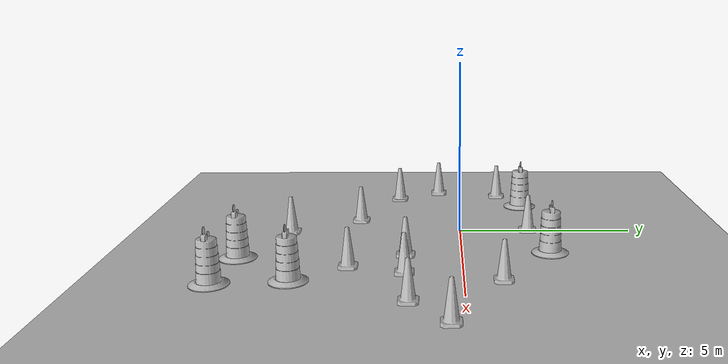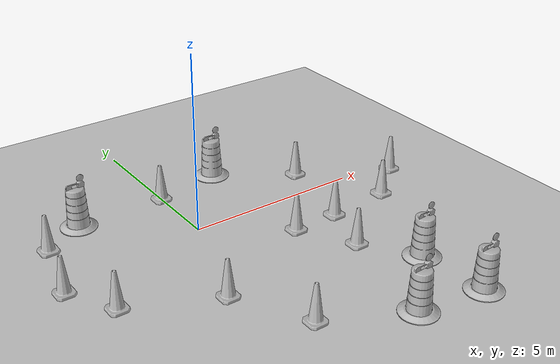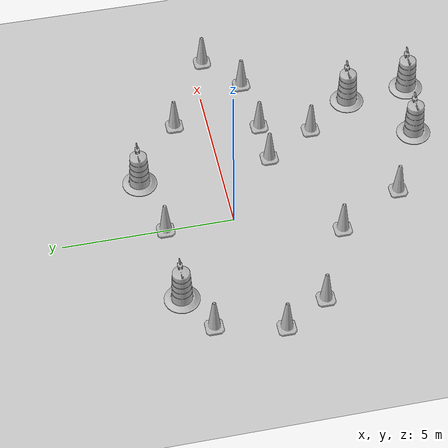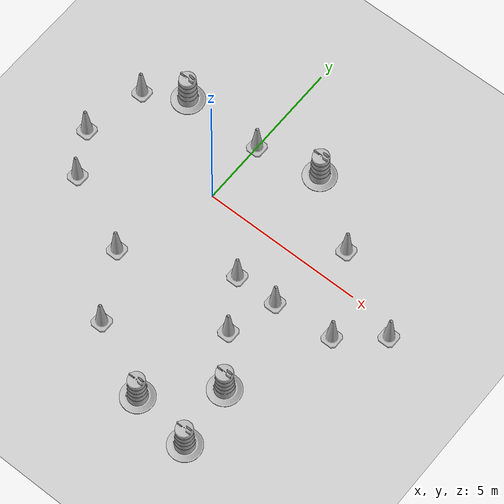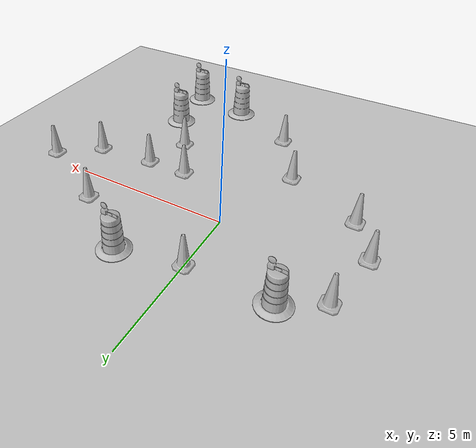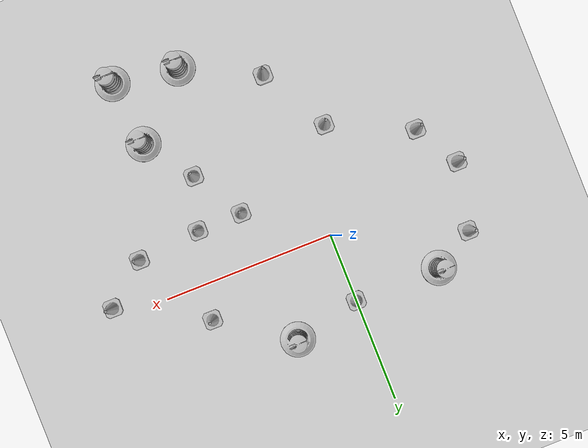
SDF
<sdf version="1.7">
 <world name="default">
  <light name="sun" type="directional">
   <pose>0 0 10 0 -0 0</pose>
   <diffuse>0.8 0.8 0.8 1</diffuse>
   <specular>0.2 0.2 0.2 1</specular>
   <attenuation>
    <range>1000</range>
    <constant>0.9</constant>
    <linear>0.01</linear>
    <quadratic>0.001</quadratic>
   </attenuation>
   <direction>-0.5 0.1 -0.9</direction>
   <spot><inner_angle>0</inner_angle><outer_angle>0</outer_angle><falloff>0</falloff></spot>
  </light>
  <model name="ground_plane">
   <static>1</static>
   <link name="link">
    <collision name="collision">
     <geometry><plane><normal>0 0 1</normal><size>100 100</size></plane></geometry>
     <surface>
      <contact><collide_bitmask>65535</collide_bitmask></contact>
      <friction><ode><mu>100</mu><mu2>50</mu2></ode></friction>
     </surface>
    </collision>
    <visual name="visual">
     <cast_shadows>0</cast_shadows>
     <geometry><plane><normal>0 0 1</normal><size>100 100</size></plane></geometry>
     <material>
      <script><uri>file://media/materials/scripts/gazebo.material</uri><name>Gazebo/Grey</name></script>
     </material>
    </visual>
   </link>
  </model>
  <gravity>0 0 -9.8</gravity>
  <magnetic_field>6e-06 2.3e-05 -4.2e-05</magnetic_field>
  <atmosphere type="adiabatic"/>
  <physics type="ode">
   <max_step_size>0.001</max_step_size>
   <real_time_factor>1</real_time_factor>
   <real_time_update_rate>1000</real_time_update_rate>
  </physics>
  <scene><ambient>0.4 0.4 0.4 1</ambient><background>0.7 0.7 0.7 1</background><shadows>1</shadows></scene>
  <audio><device>default</device></audio>
  <spherical_coordinates>
   <surface_model>EARTH_WGS84</surface_model>
   <latitude_deg>0</latitude_deg>
   <longitude_deg>0</longitude_deg>
   <elevation>0</elevation>
   <heading_deg>0</heading_deg>
  </spherical_coordinates>
  <model name="Construction Barrel">
   <link name="link">
    <inertial>
     <pose>0 0 0.4 0 -0 0</pose>
     <mass>500</mass>
     <inertia><ixx>51.2096</ixx><iyy>51.2096</iyy><izz>25</izz><ixy>0</ixy><ixz>0</ixz><iyz>0</iyz></inertia>
    </inertial>
    <collision name="collision">
     <geometry><mesh><uri>model://construction_barrel/meshes/construction_barrel.dae</uri></mesh></geometry>
    </collision>
    <visual name="visual">
     <geometry><mesh><uri>model://construction_barrel/meshes/construction_barrel.dae</uri></mesh></geometry>
    </visual>
   </link>
   <pose>3.99254 -4.38362 -1e-06 0 5e-06 -3e-05</pose>
  </model>
  <model name="Construction Cone">
   <link name="link">
    <collision name="collision">
     <geometry>
      <mesh><scale>10 10 10</scale><uri>model://construction_cone/meshes/construction_cone.dae</uri></mesh>
     </geometry>
    </collision>
    <visual name="visual">
     <geometry>
      <mesh><scale>10 10 10</scale><uri>model://construction_cone/meshes/construction_cone.dae</uri></mesh>
     </geometry>
    </visual>
    <inertial>
     <inertia><ixx>1</ixx><ixy>0</ixy><ixz>0</ixz><iyy>1</iyy><iyz>0</iyz><izz>1</izz></inertia>
     <mass>1</mass>
    </inertial>
   </link>
   <pose>0.09861 -4.95087 -0 0 -0 0</pose>
  </model>
  <model name="Construction Cone_clone">
   <link name="link">
    <collision name="collision">
     <geometry>
      <mesh><scale>10 10 10</scale><uri>model://construction_cone/meshes/construction_cone.dae</uri></mesh>
     </geometry>
    </collision>
    <visual name="visual">
     <geometry>
      <mesh><scale>10 10 10</scale><uri>model://construction_cone/meshes/construction_cone.dae</uri></mesh>
     </geometry>
    </visual>
    <inertial>
     <inertia><ixx>1</ixx><ixy>0</ixy><ixz>0</ixz><iyy>1</iyy><iyz>0</iyz><izz>1</izz></inertia>
     <mass>1</mass>
    </inertial>
   </link>
   <pose>2.13163 -1.53004 -0 0 -0 0</pose>
  </model>
  <model name="Construction Cone_clone_0">
   <link name="link">
    <collision name="collision">
     <geometry>
      <mesh><scale>10 10 10</scale><uri>model://construction_cone/meshes/construction_cone.dae</uri></mesh>
     </geometry>
    </collision>
    <visual name="visual">
     <geometry>
      <mesh><scale>10 10 10</scale><uri>model://construction_cone/meshes/construction_cone.dae</uri></mesh>
     </geometry>
    </visual>
    <inertial>
     <inertia><ixx>1</ixx><ixy>0</ixy><ixz>0</ixz><iyy>1</iyy><iyz>0</iyz><izz>1</izz></inertia>
     <mass>1</mass>
    </inertial>
   </link>
   <pose>3.45758 -1.51229 -8e-06 1e-06 -0 0</pose>
  </model>
  <model name="Construction Cone_clone_1">
   <link name="link">
    <collision name="collision">
     <geometry>
      <mesh><scale>10 10 10</scale><uri>model://construction_cone/meshes/construction_cone.dae</uri></mesh>
     </geometry>
    </collision>
    <visual name="visual">
     <geometry>
      <mesh><scale>10 10 10</scale><uri>model://construction_cone/meshes/construction_cone.dae</uri></mesh>
     </geometry>
    </visual>
    <inertial>
     <inertia><ixx>1</ixx><ixy>0</ixy><ixz>0</ixz><iyy>1</iyy><iyz>0</iyz><izz>1</izz></inertia>
     <mass>1</mass>
    </inertial>
   </link>
   <pose>5.31484 -1.34989 -0 0 -1e-06 0</pose>
  </model>
  <model name="Construction Cone_clone_2">
   <link name="link">
    <collision name="collision">
     <geometry>
      <mesh><scale>10 10 10</scale><uri>model://construction_cone/meshes/construction_cone.dae</uri></mesh>
     </geometry>
    </collision>
    <visual name="visual">
     <geometry>
      <mesh><scale>10 10 10</scale><uri>model://construction_cone/meshes/construction_cone.dae</uri></mesh>
     </geometry>
    </visual>
    <inertial>
     <inertia><ixx>1</ixx><ixy>0</ixy><ixz>0</ixz><iyy>1</iyy><iyz>0</iyz><izz>1</izz></inertia>
     <mass>1</mass>
    </inertial>
   </link>
   <pose>4 1 -6e-06 -4e-06 0 0</pose>
  </model>
  <model name="Construction Cone_clone_3">
   <link name="link">
    <collision name="collision">
     <geometry>
      <mesh><scale>10 10 10</scale><uri>model://construction_cone/meshes/construction_cone.dae</uri></mesh>
     </geometry>
    </collision>
    <visual name="visual">
     <geometry>
      <mesh><scale>10 10 10</scale><uri>model://construction_cone/meshes/construction_cone.dae</uri></mesh>
     </geometry>
    </visual>
    <inertial>
     <inertia><ixx>1</ixx><ixy>0</ixy><ixz>0</ixz><iyy>1</iyy><iyz>0</iyz><izz>1</izz></inertia>
     <mass>1</mass>
    </inertial>
   </link>
   <pose>-0 2 -0 0 -0 0</pose>
  </model>
  <model name="Construction Cone_clone_4">
   <link name="link">
    <collision name="collision">
     <geometry>
      <mesh><scale>10 10 10</scale><uri>model://construction_cone/meshes/construction_cone.dae</uri></mesh>
     </geometry>
    </collision>
    <visual name="visual">
     <geometry>
      <mesh><scale>10 10 10</scale><uri>model://construction_cone/meshes/construction_cone.dae</uri></mesh>
     </geometry>
    </visual>
    <inertial>
     <inertia><ixx>1</ixx><ixy>0</ixy><ixz>0</ixz><iyy>1</iyy><iyz>0</iyz><izz>1</izz></inertia>
     <mass>1</mass>
    </inertial>
   </link>
   <pose>-3.69601 1.31823 -5e-06 -4e-06 1e-06 0</pose>
  </model>
  <model name="Construction Cone_clone_5">
   <link name="link">
    <collision name="collision">
     <geometry>
      <mesh><scale>10 10 10</scale><uri>model://construction_cone/meshes/construction_cone.dae</uri></mesh>
     </geometry>
    </collision>
    <visual name="visual">
     <geometry>
      <mesh><scale>10 10 10</scale><uri>model://construction_cone/meshes/construction_cone.dae</uri></mesh>
     </geometry>
    </visual>
    <inertial>
     <inertia><ixx>1</ixx><ixy>0</ixy><ixz>0</ixz><iyy>1</iyy><iyz>0</iyz><izz>1</izz></inertia>
     <mass>1</mass>
    </inertial>
   </link>
   <pose>-3.37313 -1.91489 -0 0 -0 0</pose>
  </model>
  <model name="Construction Cone_clone_6">
   <link name="link">
    <collision name="collision">
     <geometry>
      <mesh><scale>10 10 10</scale><uri>model://construction_cone/meshes/construction_cone.dae</uri></mesh>
     </geometry>
    </collision>
    <visual name="visual">
     <geometry>
      <mesh><scale>10 10 10</scale><uri>model://construction_cone/meshes/construction_cone.dae</uri></mesh>
     </geometry>
    </visual>
    <inertial>
     <inertia><ixx>1</ixx><ixy>0</ixy><ixz>0</ixz><iyy>1</iyy><iyz>0</iyz><izz>1</izz></inertia>
     <mass>1</mass>
    </inertial>
   </link>
   <pose>-1 -3 0 -1e-06 0 0</pose>
  </model>
  <model name="Construction Cone_clone_7">
   <link name="link">
    <collision name="collision">
     <geometry>
      <mesh><scale>10 10 10</scale><uri>model://construction_cone/meshes/construction_cone.dae</uri></mesh>
     </geometry>
    </collision>
    <visual name="visual">
     <geometry>
      <mesh><scale>10 10 10</scale><uri>model://construction_cone/meshes/construction_cone.dae</uri></mesh>
     </geometry>
    </visual>
    <inertial>
     <inertia><ixx>1</ixx><ixy>0</ixy><ixz>0</ixz><iyy>1</iyy><iyz>0</iyz><izz>1</izz></inertia>
     <mass>1</mass>
    </inertial>
   </link>
   <pose>6.52441 -0.353051 -0 0 -0 0</pose>
  </model>
  <model name="Construction Cone_clone_8">
   <link name="link">
    <collision name="collision">
     <geometry>
      <mesh><scale>10 10 10</scale><uri>model://construction_cone/meshes/construction_cone.dae</uri></mesh>
     </geometry>
    </collision>
    <visual name="visual">
     <geometry>
      <mesh><scale>10 10 10</scale><uri>model://construction_cone/meshes/construction_cone.dae</uri></mesh>
     </geometry>
    </visual>
    <inertial>
     <inertia><ixx>1</ixx><ixy>0</ixy><ixz>0</ixz><iyy>1</iyy><iyz>0</iyz><izz>1</izz></inertia>
     <mass>1</mass>
    </inertial>
   </link>
   <pose>-4.12498 -0.625306 0 -0 -0 -0</pose>
  </model>
  <model name="Construction Cone_clone_9">
   <link name="link">
    <collision name="collision">
     <geometry>
      <mesh><scale>10 10 10</scale><uri>model://construction_cone/meshes/construction_cone.dae</uri></mesh>
     </geometry>
    </collision>
    <visual name="visual">
     <geometry>
      <mesh><scale>10 10 10</scale><uri>model://construction_cone/meshes/construction_cone.dae</uri></mesh>
     </geometry>
    </visual>
    <inertial>
     <inertia><ixx>1</ixx><ixy>0</ixy><ixz>0</ixz><iyy>1</iyy><iyz>0</iyz><izz>1</izz></inertia>
     <mass>1</mass>
    </inertial>
   </link>
   <pose>3 -3 -0 0 -0 0</pose>
  </model>
  <model name="Construction Barrel_clone">
   <link name="link">
    <inertial>
     <pose>0 0 0.4 0 -0 0</pose>
     <mass>500</mass>
     <inertia><ixx>51.2096</ixx><iyy>51.2096</iyy><izz>25</izz><ixy>0</ixy><ixz>0</ixz><iyz>0</iyz></inertia>
    </inertial>
    <collision name="collision">
     <geometry><mesh><uri>model://construction_barrel/meshes/construction_barrel.dae</uri></mesh></geometry>
    </collision>
    <visual name="visual">
     <geometry><mesh><uri>model://construction_barrel/meshes/construction_barrel.dae</uri></mesh></geometry>
    </visual>
   </link>
   <pose>2.28917 -6.02864 0 0 0 -2.8e-05</pose>
  </model>
  <model name="Construction Barrel_clone_0">
   <link name="link">
    <inertial>
     <pose>0 0 0.4 0 -0 0</pose>
     <mass>500</mass>
     <inertia><ixx>51.2096</ixx><iyy>51.2096</iyy><izz>25</izz><ixy>0</ixy><ixz>0</ixz><iyz>0</iyz></inertia>
    </inertial>
    <collision name="collision">
     <geometry><mesh><uri>model://construction_barrel/meshes/construction_barrel.dae</uri></mesh></geometry>
    </collision>
    <visual name="visual">
     <geometry><mesh><uri>model://construction_barrel/meshes/construction_barrel.dae</uri></mesh></geometry>
    </visual>
   </link>
   <pose>1.94996 2.41682 -1e-06 4e-06 -1e-06 -2.8e-05</pose>
  </model>
  <model name="Construction Barrel_clone_1">
   <link name="link">
    <inertial>
     <pose>0 0 0.4 0 -0 0</pose>
     <mass>500</mass>
     <inertia><ixx>51.2096</ixx><iyy>51.2096</iyy><izz>25</izz><ixy>0</ixy><ixz>0</ixz><iyz>0</iyz></inertia>
    </inertial>
    <collision name="collision">
     <geometry><mesh><uri>model://construction_barrel/meshes/construction_barrel.dae</uri></mesh></geometry>
    </collision>
    <visual name="visual">
     <geometry><mesh><uri>model://construction_barrel/meshes/construction_barrel.dae</uri></mesh></geometry>
    </visual>
   </link>
   <pose>-2.53698 2 -1e-06 0 5e-06 -2.9e-05</pose>
  </model>
  <model name="Construction Barrel_clone_2">
   <link name="link">
    <inertial>
     <pose>0 0 0.4 0 -0 0</pose>
     <mass>500</mass>
     <inertia><ixx>51.2096</ixx><iyy>51.2096</iyy><izz>25</izz><ixy>0</ixy><ixz>0</ixz><iyz>0</iyz></inertia>
    </inertial>
    <collision name="collision">
     <geometry><mesh><uri>model://construction_barrel/meshes/construction_barrel.dae</uri></mesh></geometry>
    </collision>
    <visual name="visual">
     <geometry><mesh><uri>model://construction_barrel/meshes/construction_barrel.dae</uri></mesh></geometry>
    </visual>
   </link>
   <pose>4.17912 -6.30744 -4e-06 -5e-06 -7e-06 -2.9e-05</pose>
  </model>
 </world>
</sdf>
